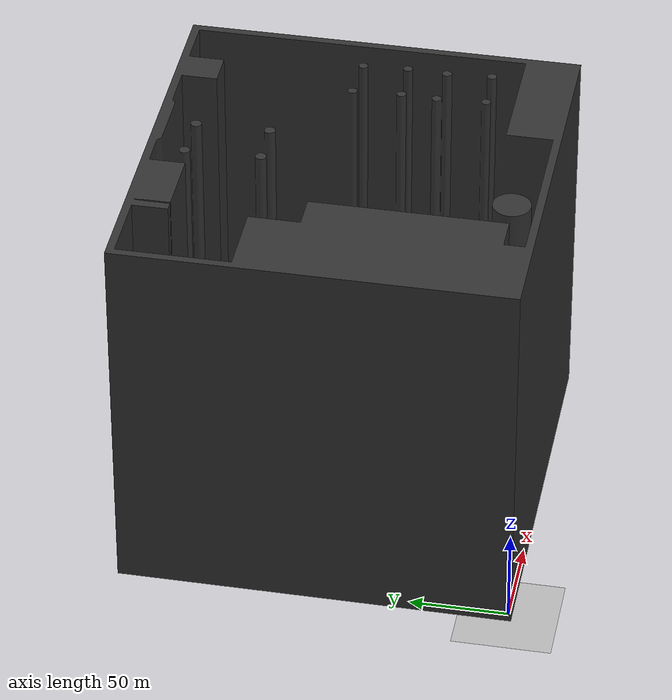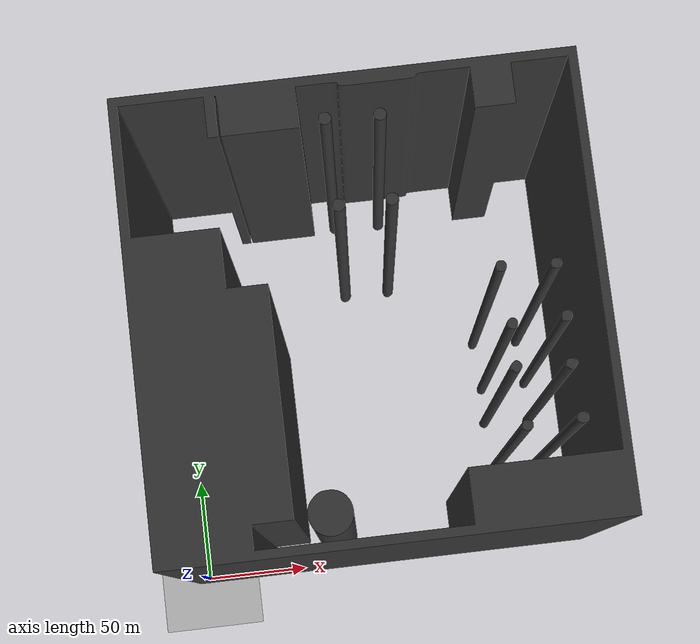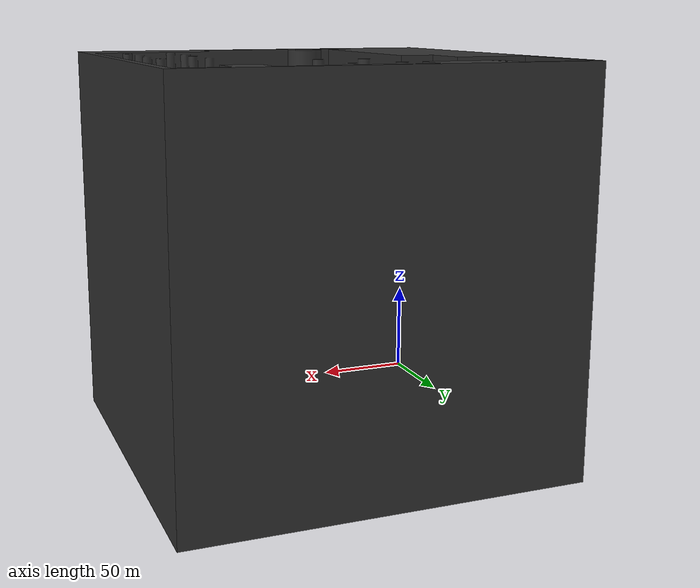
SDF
<?xml version="1.0" encoding="UTF-8"?>
<sdf version="1.6">
  <world name="austria">
    <gravity>0 0 -9.8</gravity>
    <model name="walls">
      <static>1</static>
      <pose frame="">-5 -2 0 0 0 0</pose>
      <link name="link_d0">
        <inertial>
          <mass>0</mass>
          <inertia>
            <ixx>0.166667</ixx>
            <ixy>0</ixy>
            <ixz>0</ixz>
            <iyy>0.166667</iyy>
            <iyz>0</iyz>
            <izz>0.166667</izz>
          </inertia>
        </inertial>
        <collision concave="yes" name="collision_0">
          <geometry>
            <mesh>
              <scale>200 200 200</scale>
              <uri>meshes/kitchen.obj</uri>
            </mesh>
          </geometry>
        </collision>
        <visual name="visual">
          <geometry>
            <mesh>
              <scale>200 200 200</scale>
              <uri>meshes/kitchen.obj</uri>
            </mesh>
          </geometry>
            <material>
          <ambient>0.2 0.2 0.2 1</ambient>
          <diffuse>0.2 0.2 0.2 1</diffuse>
          <specular>0 0 0 0</specular>
          <emissive>0 0 0 0</emissive>
        </material>
        </visual>
      </link>
    </model>
    <model name="floor">
      <static>1</static>
      <pose frame="">0 0 0 0 0 0</pose>
      <link name="link_d0">
        <inertial>
          <mass>0</mass>
          <inertia>
            <ixx>0.166667</ixx>
            <ixy>0</ixy>
            <ixz>0</ixz>
            <iyy>0.166667</iyy>
            <iyz>0</iyz>
            <izz>0.166667</izz>
          </inertia>
        </inertial>
        <collision concave="yes" name="collision_0">
          <geometry>
            <mesh>
              <scale>1 1 1</scale>
              <uri>meshes/Floor.obj</uri>
            </mesh>
          </geometry>
        </collision>
        <visual name="visual">
          <geometry>
            <mesh>
              <scale>1 1 1</scale>
              <uri>meshes/Floor.obj</uri>
            </mesh>
          </geometry>
        </visual>
      </link>
    </model>
  </world>
</sdf>
